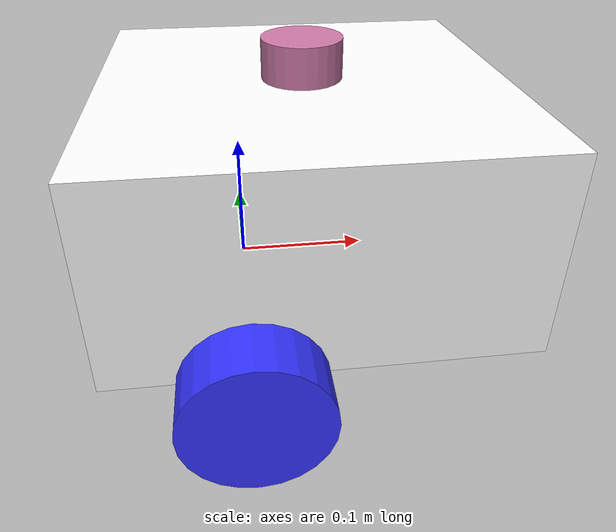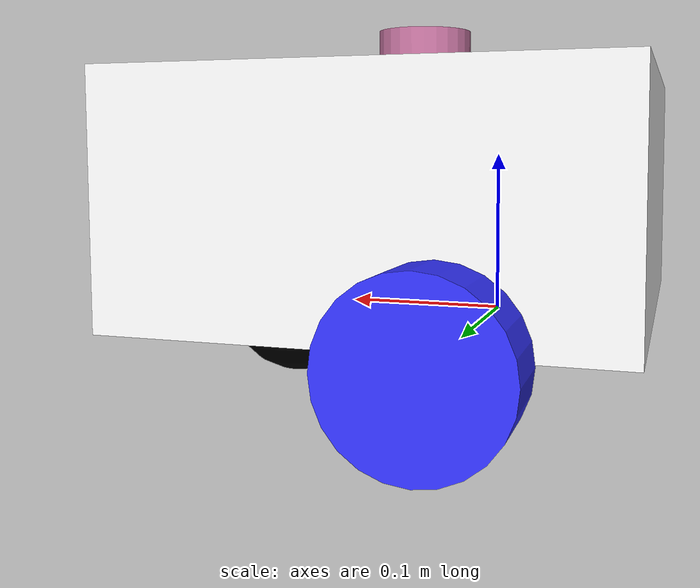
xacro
<?xml version="1.0"?>
<robot xmlns:xacro="http://www.ros.org/wiki/xacro" >

    <xacro:include filename="$(find robot_description)/urdf/inertial_macros.xacro"/>

    <material name="white">
        <color rgba="1 1 1 1" />
    </material>

    <material name="orange">
        <color rgba="1 0.3 0.1 1"/>
    </material>

    <material name="blue">
        <color rgba="0.2 0.2 1 1"/>
    </material>

    <material name="black">
        <color rgba="0 0 0 1"/>
    </material>

    <!-- BASE LINK -->

    <link name="base_link">

    </link>

    <!-- CHASSIS LINK -->

    <joint name="chassis_joint" type="fixed">
        <parent link="base_link"/>
        <child link="chassis"/>
        <origin xyz="-0.1 0 0"/>
    </joint>

    <link name="chassis">
        <visual>
            <origin xyz="0.15 0 0.075"/>
            <geometry>
                <box size="0.3 0.3 0.15"/>
            </geometry>
            <material name="white"/>
        </visual>
        <collision>
            <origin xyz="0.15 0 0.075"/>
            <geometry>
                <box size="0.3 0.3 0.15"/>
            </geometry>
        </collision>
        <xacro:inertial_box mass="0.5" x="0.3" y="0.3" z="0.15">
            <origin xyz="0.15 0 0.075" rpy="0 0 0"/>
        </xacro:inertial_box>
    </link>

    <gazebo reference="chassis">
        <material>Gazebo/White</material>
    </gazebo>

    <!-- LEFT WHEEL LINK -->

    <joint name="left_wheel_joint" type="continuous">
        <parent link="base_link"/>
        <child link="left_wheel"/>
        <origin xyz="0 0.175 0" rpy="-${pi/2} 0 0" />
        <axis xyz="0 0 1"/>
    </joint>

    <link name="left_wheel">
        <visual>
            <geometry>
                <cylinder radius="0.05" length="0.04"/>
            </geometry>
            <material name="blue"/>
        </visual>
        <collision>
            <geometry>
                <cylinder radius="0.05" length="0.04"/>
            </geometry>
        </collision>
        <xacro:inertial_cylinder mass="0.1" length="0.04" radius="0.05">
            <origin xyz="0 0 0" rpy="0 0 0"/>
        </xacro:inertial_cylinder>
    </link>

    <gazebo reference="left_wheel">
        <material>Gazebo/Blue</material>
    </gazebo>

    <!-- RIGHT WHEEL LINK -->

    <joint name="right_wheel_joint" type="continuous">
        <parent link="base_link"/>
        <child link="right_wheel"/>
        <origin xyz="0 -0.175 0" rpy="${pi/2} 0 0" />
        <axis xyz="0 0 -1"/>
    </joint>

    <link name="right_wheel">
        <visual>
            <geometry>
                <cylinder radius="0.05" length="0.04"/>
            </geometry>
            <material name="blue"/>
        </visual>
        <collision>
            <geometry>
                <cylinder radius="0.05" length="0.04"/>
            </geometry>
        </collision>
        <xacro:inertial_cylinder mass="0.1" length="0.04" radius="0.05">
            <origin xyz="0 0 0" rpy="0 0 0"/>
        </xacro:inertial_cylinder>
    </link>

    <gazebo reference="right_wheel">
        <material>Gazebo/Blue</material>
    </gazebo>

    <!-- CASTER WHEEL LINK -->

    <joint name="caster_wheel_joint" type="fixed">
        <parent link="chassis"/>
        <child link="caster_wheel"/>
        <origin xyz="0.24 0 0"/>
    </joint>

    <link name="caster_wheel">
        <visual>
            <geometry>
                <sphere radius="0.05"/>
            </geometry>
            <material name="black"/>
        </visual>
        <collision>
            <geometry>
                <sphere radius="0.05"/>
            </geometry>
        </collision>
        <xacro:inertial_sphere mass="0.1" radius="0.05">
            <origin xyz="0 0 0" rpy="0 0 0"/>
        </xacro:inertial_sphere>
    </link>

    <gazebo reference="caster_wheel">
        <material>Gazebo/Black</material>
        <mu1 value="0.001"/>
        <mu2 value="0.001"/>
    </gazebo>

    <!-- IMU -->
  <link name="imu_link">
  </link>
  <joint name="imu_joint" type="fixed">
    <parent link="chassis"/>
    <child link="imu_link"/>
    <origin xyz="0 0 0" rpy="0 0 0"/>
  </joint>

  <!-- Lidar -->
  <link name="lidar_link">
    <visual>
      <origin xyz="0 0 0" rpy="0 0 0"/>
      <geometry>
        <cylinder length="0.03" radius="0.03"/>
      </geometry>
    </visual>
    <collision>
      <origin xyz="0 0 0" rpy="0 0 0"/>
      <geometry>
        <cylinder length="0.03" radius="0.03"/>
      </geometry>
    </collision>
  </link>
  <joint name="lidar_joint" type="fixed">
    <origin xyz="0.15 0 0.165" rpy="0 0 0"/>
    <parent link="chassis"/>
    <child link="lidar_link"/>
  </joint>

  <!-- Camera -->
  <link name="camera_link">
    <visual>
      <origin xyz="0 0 0" rpy="0 0 0"/>
      <geometry>
        <box size="0.01 0.03 0.03"/>
      </geometry>
    </visual>
    <collision>
      <origin xyz="0 0 0" rpy="0 0 0"/>
      <geometry>
        <box size="0.01 0.03 0.03"/>
      </geometry>
    </collision>
  </link>
  <joint name="camera_joint" type="fixed">
    <origin xyz="0.3 0 0.1" rpy="0 0 0"/>
    <parent link="chassis"/>
    <child link="camera_link"/>
  </joint>

</robot>
